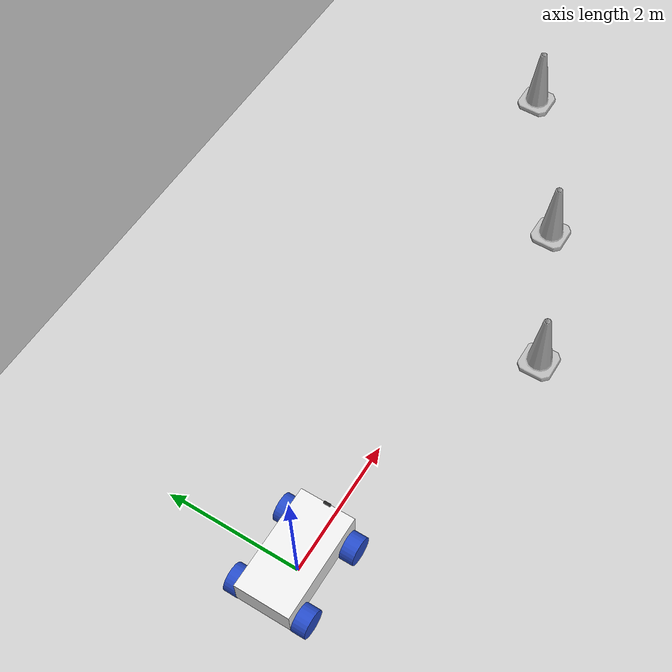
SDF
<sdf version="1.7">
 <world name="default">
  <light name="sun" type="directional">
   <pose>0 0 10 0 -0 0</pose>
   <diffuse>0.8 0.8 0.8 1</diffuse>
   <specular>0.2 0.2 0.2 1</specular>
   <attenuation>
    <range>1000</range>
    <constant>0.9</constant>
    <linear>0.01</linear>
    <quadratic>0.001</quadratic>
   </attenuation>
   <direction>-0.5 0.1 -0.9</direction>
   <spot><inner_angle>0</inner_angle><outer_angle>0</outer_angle><falloff>0</falloff></spot>
  </light>
  <model name="ground_plane">
   <static>1</static>
   <link name="link">
    <collision name="collision">
     <geometry><plane><normal>0 0 1</normal><size>100 100</size></plane></geometry>
     <surface>
      <contact><collide_bitmask>65535</collide_bitmask></contact>
      <friction><ode><mu>100</mu><mu2>50</mu2></ode></friction>
     </surface>
    </collision>
    <visual name="visual">
     <cast_shadows>0</cast_shadows>
     <geometry><plane><normal>0 0 1</normal><size>100 100</size></plane></geometry>
     <material>
      <script><uri>file://media/materials/scripts/gazebo.material</uri><name>Gazebo/Grey</name></script>
     </material>
    </visual>
   </link>
  </model>
  <gravity>0 0 -9.8</gravity>
  <magnetic_field>6e-06 2.3e-05 -4.2e-05</magnetic_field>
  <atmosphere type="adiabatic"/>
  <physics type="ode">
   <max_step_size>0.001</max_step_size>
   <real_time_factor>1</real_time_factor>
   <real_time_update_rate>1000</real_time_update_rate>
  </physics>
  <scene><ambient>0.4 0.4 0.4 1</ambient><background>0.7 0.7 0.7 1</background><shadows>1</shadows></scene>
  <audio><device>default</device></audio>
  <spherical_coordinates>
   <surface_model>EARTH_WGS84</surface_model>
   <latitude_deg>0</latitude_deg>
   <longitude_deg>0</longitude_deg>
   <elevation>0</elevation>
   <heading_deg>0</heading_deg>
  </spherical_coordinates>
  <model name="my_bot">
   <link name="base_link">
    <inertial>
     <pose>0 0 0.4 0 -0 0</pose>
     <mass>5</mass>
     <inertia><ixx>0.333333</ixx><ixy>0</ixy><ixz>0</ixz><iyy>1.00417</iyy><iyz>0</iyz><izz>1.20417</izz></inertia>
    </inertial>
    <collision name="base_link_fixed_joint_lump__chassis_collision">
     <pose>0 0 0.4 0 -0 0</pose>
     <geometry><box><size>1.5 0.8 0.4</size></box></geometry>
    </collision>
    <visual name="base_link_fixed_joint_lump__chassis_visual">
     <pose>0 0 0.4 0 -0 0</pose>
     <geometry><box><size>1.5 0.8 0.4</size></box></geometry>
     <material>
      <script><name>Gazebo/White</name><uri>file://media/materials/scripts/gazebo.material</uri></script>
     </material>
    </visual>
    <visual name="base_link_fixed_joint_lump__camera_link_visual_1">
     <pose>0.735 0 0.615 0 -0 0</pose>
     <geometry><box><size>0.03 0.1 0.03</size></box></geometry>
     <material>
      <script><name>Gazebo/Black</name><uri>file://media/materials/scripts/gazebo.material</uri></script>
     </material>
    </visual>
    <sensor name="camera" type="camera">
     <visualize>1</visualize>
     <update_rate>30</update_rate>
     <camera>
      <horizontal_fov>1.089</horizontal_fov>
      <image><format>R8G8B8</format><width>640</width><height>480</height></image>
      <clip><near>0.05</near><far>8</far></clip>
     </camera>
     <plugin name="camera_controller" filename="libgazebo_ros_camera.so">
      <frame_name>camera_optical_link</frame_name>
     </plugin>
     <pose>0.735 0 0.615 0 -0 0</pose>
    </sensor>
   </link>
   <joint name="front_left_wheel_joint" type="revolute">
    <pose relative_to="base_link">0.55 0.5 0.2 -1.5708 0 0</pose>
    <parent>base_link</parent>
    <child>front_left_wheel</child>
    <axis>
     <xyz>0 0 1</xyz>
     <limit><lower>-1e+16</lower><upper>1e+16</upper></limit>
     <dynamics><spring_reference>0</spring_reference><spring_stiffness>0</spring_stiffness></dynamics>
    </axis>
   </joint>
   <link name="front_left_wheel">
    <pose relative_to="front_left_wheel_joint">0 0 0 0 -0 0</pose>
    <inertial>
     <pose>0 0 0.2 0 -0 0</pose>
     <mass>1</mass>
     <inertia><ixx>0.0133333</ixx><ixy>0</ixy><ixz>0</ixz><iyy>0.0133333</iyy><iyz>0</iyz><izz>0.02</izz></inertia>
    </inertial>
    <collision name="front_left_wheel_collision">
     <geometry><cylinder><length>0.2</length><radius>0.2</radius></cylinder></geometry>
     <surface><friction><ode><mu>0.5</mu><mu2>0.5</mu2></ode></friction></surface>
    </collision>
    <visual name="front_left_wheel_visual">
     <geometry><cylinder><length>0.2</length><radius>0.2</radius></cylinder></geometry>
     <material>
      <script><name>Gazebo/Blue</name><uri>file://media/materials/scripts/gazebo.material</uri></script>
     </material>
    </visual>
   </link>
   <joint name="front_right_wheel_joint" type="revolute">
    <pose relative_to="base_link">0.55 -0.5 0.2 1.5708 -0 0</pose>
    <parent>base_link</parent>
    <child>front_right_wheel</child>
    <axis>
     <xyz>0 0 -1</xyz>
     <limit><lower>-1e+16</lower><upper>1e+16</upper></limit>
     <dynamics><spring_reference>0</spring_reference><spring_stiffness>0</spring_stiffness></dynamics>
    </axis>
   </joint>
   <link name="front_right_wheel">
    <pose relative_to="front_right_wheel_joint">0 0 0 0 -0 0</pose>
    <inertial>
     <pose>0 0 0.2 0 -0 0</pose>
     <mass>1</mass>
     <inertia><ixx>0.0133333</ixx><ixy>0</ixy><ixz>0</ixz><iyy>0.0133333</iyy><iyz>0</iyz><izz>0.02</izz></inertia>
    </inertial>
    <collision name="front_right_wheel_collision">
     <geometry><cylinder><length>0.2</length><radius>0.2</radius></cylinder></geometry>
     <surface><friction><ode><mu>0.5</mu><mu2>0.5</mu2></ode></friction></surface>
    </collision>
    <visual name="front_right_wheel_visual">
     <geometry><cylinder><length>0.2</length><radius>0.2</radius></cylinder></geometry>
     <material>
      <script><name>Gazebo/Blue</name><uri>file://media/materials/scripts/gazebo.material</uri></script>
     </material>
    </visual>
   </link>
   <joint name="rear_left_wheel_joint" type="revolute">
    <pose relative_to="base_link">-0.55 0.5 0.2 -1.5708 0 0</pose>
    <parent>base_link</parent>
    <child>rear_left_wheel</child>
    <axis>
     <xyz>0 0 1</xyz>
     <limit><lower>-1e+16</lower><upper>1e+16</upper></limit>
     <dynamics><spring_reference>0</spring_reference><spring_stiffness>0</spring_stiffness></dynamics>
    </axis>
   </joint>
   <link name="rear_left_wheel">
    <pose relative_to="rear_left_wheel_joint">0 0 0 0 -0 0</pose>
    <inertial>
     <pose>0 0 0.2 0 -0 0</pose>
     <mass>1</mass>
     <inertia><ixx>0.0133333</ixx><ixy>0</ixy><ixz>0</ixz><iyy>0.0133333</iyy><iyz>0</iyz><izz>0.02</izz></inertia>
    </inertial>
    <collision name="rear_left_wheel_collision">
     <geometry><cylinder><length>0.2</length><radius>0.2</radius></cylinder></geometry>
     <surface><friction><ode><mu>0.5</mu><mu2>0.5</mu2></ode></friction></surface>
    </collision>
    <visual name="rear_left_wheel_visual">
     <geometry><cylinder><length>0.2</length><radius>0.2</radius></cylinder></geometry>
     <material>
      <script><name>Gazebo/Blue</name><uri>file://media/materials/scripts/gazebo.material</uri></script>
     </material>
    </visual>
   </link>
   <joint name="rear_right_wheel_joint" type="revolute">
    <pose relative_to="base_link">-0.55 -0.5 0.2 1.5708 -0 0</pose>
    <parent>base_link</parent>
    <child>rear_right_wheel</child>
    <axis>
     <xyz>0 0 -1</xyz>
     <limit><lower>-1e+16</lower><upper>1e+16</upper></limit>
     <dynamics><spring_reference>0</spring_reference><spring_stiffness>0</spring_stiffness></dynamics>
    </axis>
   </joint>
   <link name="rear_right_wheel">
    <pose relative_to="rear_right_wheel_joint">0 0 0 0 -0 0</pose>
    <inertial>
     <pose>0 0 0.2 0 -0 0</pose>
     <mass>1</mass>
     <inertia><ixx>0.0133333</ixx><ixy>0</ixy><ixz>0</ixz><iyy>0.0133333</iyy><iyz>0</iyz><izz>0.02</izz></inertia>
    </inertial>
    <collision name="rear_right_wheel_collision">
     <geometry><cylinder><length>0.2</length><radius>0.2</radius></cylinder></geometry>
     <surface><friction><ode><mu>0.5</mu><mu2>0.5</mu2></ode></friction></surface>
    </collision>
    <visual name="rear_right_wheel_visual">
     <geometry><cylinder><length>0.2</length><radius>0.2</radius></cylinder></geometry>
     <material>
      <script><name>Gazebo/Blue</name><uri>file://media/materials/scripts/gazebo.material</uri></script>
     </material>
    </visual>
   </link>
   <static>0</static>
   <plugin name="diff_drive" filename="libgazebo_ros_diff_drive.so">
    <num_wheel_pairs>2</num_wheel_pairs>
    <left_joint>front_left_wheel_joint</left_joint>
    <left_joint>rear_left_wheel_joint</left_joint>
    <right_joint>front_right_wheel_joint</right_joint>
    <right_joint>rear_right_wheel_joint</right_joint>
    <wheel_separation>1</wheel_separation>
    <wheel_diameter>0.4</wheel_diameter>
    <max_wheel_torque>200</max_wheel_torque>
    <max_wheel_acceleration>10.0</max_wheel_acceleration>
    <odometry_frame>odom</odometry_frame>
    <robot_base_frame>base_link</robot_base_frame>
    <publish_odom>1</publish_odom>
    <publish_odom_tf>1</publish_odom_tf>
    <publish_wheel_tf>1</publish_wheel_tf>
   </plugin>
   <pose>0.000803 0.001563 -2e-06 0 4e-06 -0.000456</pose>
  </model>
  <model name="Construction Cone">
   <link name="link">
    <collision name="collision">
     <geometry>
      <mesh><scale>10 10 10</scale><uri>model://construction_cone/meshes/construction_cone.dae</uri></mesh>
     </geometry>
    </collision>
    <visual name="visual">
     <geometry>
      <mesh><scale>10 10 10</scale><uri>model://construction_cone/meshes/construction_cone.dae</uri></mesh>
     </geometry>
    </visual>
    <inertial>
     <inertia><ixx>1</ixx><ixy>0</ixy><ixz>0</ixz><iyy>1</iyy><iyz>0</iyz><izz>1</izz></inertia>
     <mass>1</mass>
    </inertial>
   </link>
   <pose>4.30126 -1.21751 -9e-06 -1e-06 -0 -0</pose>
  </model>
  <model name="Construction Cone_0">
   <link name="link">
    <collision name="collision">
     <geometry>
      <mesh><scale>10 10 10</scale><uri>model://construction_cone/meshes/construction_cone.dae</uri></mesh>
     </geometry>
    </collision>
    <visual name="visual">
     <geometry>
      <mesh><scale>10 10 10</scale><uri>model://construction_cone/meshes/construction_cone.dae</uri></mesh>
     </geometry>
    </visual>
    <inertial>
     <inertia><ixx>1</ixx><ixy>0</ixy><ixz>0</ixz><iyy>1</iyy><iyz>0</iyz><izz>1</izz></inertia>
     <mass>1</mass>
    </inertial>
   </link>
   <pose>6.37133 -0.353347 -0 0 -0 0</pose>
  </model>
  <model name="Construction Cone_1">
   <link name="link">
    <collision name="collision">
     <geometry>
      <mesh><scale>10 10 10</scale><uri>model://construction_cone/meshes/construction_cone.dae</uri></mesh>
     </geometry>
    </collision>
    <visual name="visual">
     <geometry>
      <mesh><scale>10 10 10</scale><uri>model://construction_cone/meshes/construction_cone.dae</uri></mesh>
     </geometry>
    </visual>
    <inertial>
     <inertia><ixx>1</ixx><ixy>0</ixy><ixz>0</ixz><iyy>1</iyy><iyz>0</iyz><izz>1</izz></inertia>
     <mass>1</mass>
    </inertial>
   </link>
   <pose>8.62971 1.04533 -0 0 -1e-06 0</pose>
  </model>
 </world>
</sdf>
